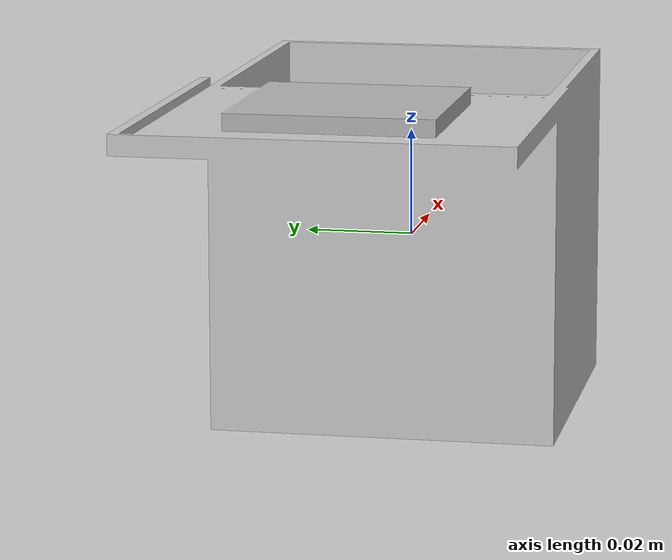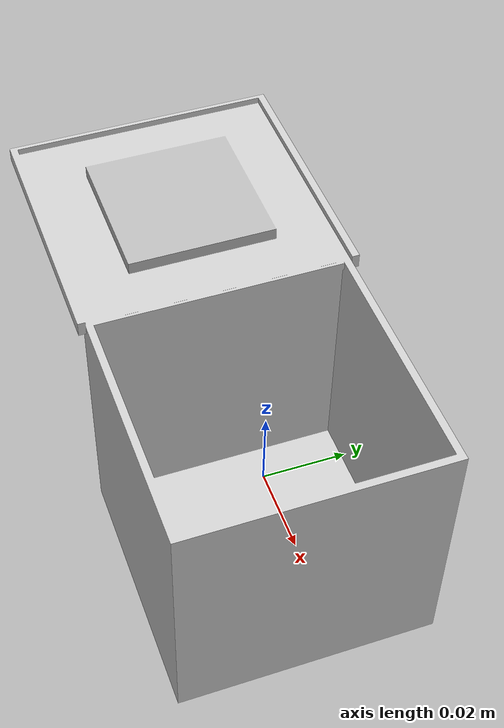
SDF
<?xml version="1.0" ?>
<sdf version="1.5">
  <model name="box_b2">
    <static>true</static>
    <link name="box_b2_link">

      <collision name="collision">
        <geometry>
          <mesh>
            <uri>model://boxes/b2/meshes/b2.dae</uri>
            <scale>0.6 0.6 0.6</scale>
          </mesh>
        </geometry>
        <pose>0 0 0.0 0 0 0</pose>
      </collision>

      <visual name="visual">
        <geometry>
          <mesh>
            <uri>model://boxes/b2/meshes/b2.dae</uri>
            <scale>0.6 0.6 0.6</scale>
          </mesh>
        </geometry>
        <material>
          <script>
            <uri>model://boxes/b2/materials/scripts</uri>
            <uri>model://boxes/b2/materials/textures</uri>
            <name>B2/Diffuse</name>
          </script>
        </material>
      </visual>

      <inertial>
        <pose>0 0 0 0 0 0</pose>
        <inertia>
          <ixx>0.1</ixx>
          <ixy>0.1</ixy>
          <ixz>0.1</ixz>
          <iyy>0.1</iyy>
          <iyz>0.1</iyz>
          <izz>0.1</izz>
        </inertia>
        <mass>0.14</mass>
      </inertial>

    </link>
  </model>
</sdf>
